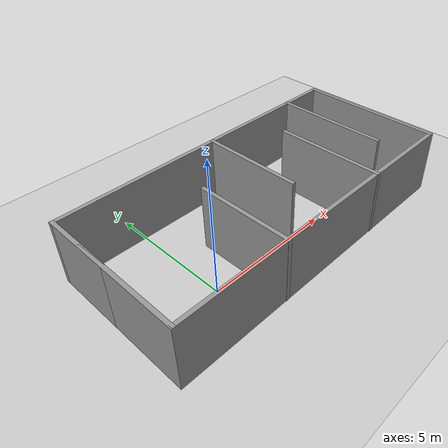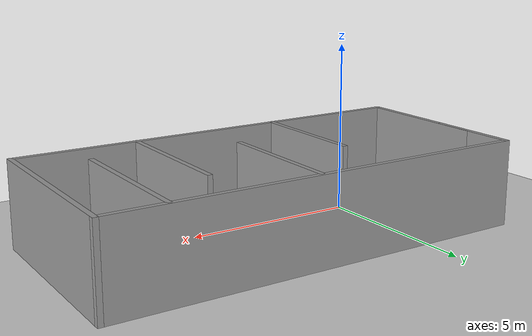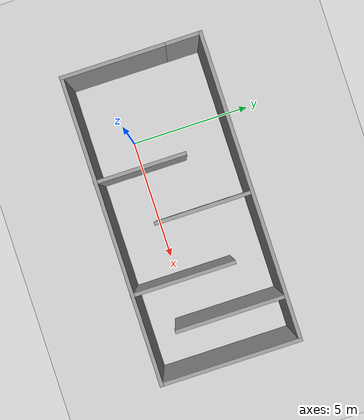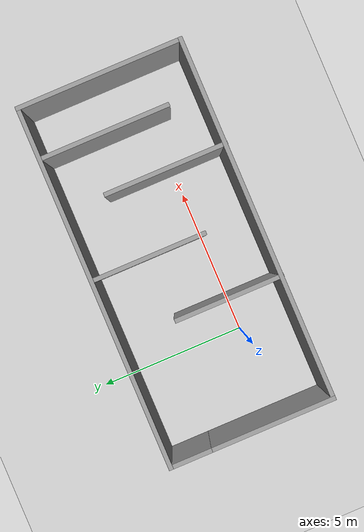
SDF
<sdf version="1.7">
 <world name="default">
  <light name="sun" type="directional">
   <pose>0 0 10 0 -0 0</pose>
   <diffuse>0.8 0.8 0.8 1</diffuse>
   <specular>0.2 0.2 0.2 1</specular>
   <attenuation>
    <range>1000</range>
    <constant>0.9</constant>
    <linear>0.01</linear>
    <quadratic>0.001</quadratic>
   </attenuation>
   <direction>-0.5 0.1 -0.9</direction>
   <spot><inner_angle>0</inner_angle><outer_angle>0</outer_angle><falloff>0</falloff></spot>
  </light>
  <model name="ground_plane">
   <static>1</static>
   <link name="link">
    <collision name="collision">
     <geometry><plane><normal>0 0 1</normal><size>100 100</size></plane></geometry>
     <surface>
      <contact><collide_bitmask>65535</collide_bitmask></contact>
      <friction><ode><mu>100</mu><mu2>50</mu2></ode></friction>
     </surface>
    </collision>
    <visual name="visual">
     <cast_shadows>0</cast_shadows>
     <geometry><plane><normal>0 0 1</normal><size>100 100</size></plane></geometry>
     <material>
      <script><uri>file://media/materials/scripts/gazebo.material</uri><name>Gazebo/Grey</name></script>
     </material>
    </visual>
   </link>
  </model>
  <gravity>0 0 -9.8</gravity>
  <magnetic_field>6e-06 2.3e-05 -4.2e-05</magnetic_field>
  <atmosphere type="adiabatic"/>
  <physics type="ode">
   <max_step_size>0.001</max_step_size>
   <real_time_factor>1</real_time_factor>
   <real_time_update_rate>1000</real_time_update_rate>
  </physics>
  <scene><ambient>0.4 0.4 0.4 1</ambient><background>0.7 0.7 0.7 1</background><shadows>1</shadows></scene>
  <spherical_coordinates>
   <surface_model>EARTH_WGS84</surface_model>
   <latitude_deg>0</latitude_deg>
   <longitude_deg>0</longitude_deg>
   <elevation>0</elevation>
   <heading_deg>0</heading_deg>
  </spherical_coordinates>
  <model name="Untitled">
   <pose>3.24084 1.01869 0 0 -0 0</pose>
   <link name="Wall_15">
    <collision name="Wall_15_Collision">
     <geometry><box><size>4.25 0.15 2.5</size></box></geometry>
     <pose>0 0 1.25 0 -0 0</pose>
    </collision>
    <visual name="Wall_15_Visual">
     <pose>0 0 1.25 0 -0 0</pose>
     <geometry><box><size>4.25 0.15 2.5</size></box></geometry>
     <material>
      <script><uri>file://media/materials/scripts/gazebo.material</uri><name>Gazebo/Grey</name></script>
      <ambient>1 1 1 1</ambient>
     </material>
     <meta><layer>0</layer></meta>
    </visual>
    <pose>-6.175 -0.745135 0 0 -0 -1.5708</pose>
   </link>
   <link name="Wall_16">
    <collision name="Wall_16_Collision">
     <geometry><box><size>12.5 0.15 2.5</size></box></geometry>
     <pose>0 0 1.25 0 -0 0</pose>
    </collision>
    <visual name="Wall_16_Visual">
     <pose>0 0 1.25 0 -0 0</pose>
     <geometry><box><size>12.5 0.15 2.5</size></box></geometry>
     <material>
      <script><uri>file://media/materials/scripts/gazebo.material</uri><name>Gazebo/Grey</name></script>
      <ambient>1 1 1 1</ambient>
     </material>
     <meta><layer>0</layer></meta>
    </visual>
    <pose>-0 -2.79514 0 0 -0 0</pose>
   </link>
   <link name="Wall_17">
    <collision name="Wall_17_Collision">
     <geometry><box><size>5.75 0.15 2.5</size></box></geometry>
     <pose>0 0 1.25 0 -0 0</pose>
    </collision>
    <visual name="Wall_17_Visual">
     <pose>0 0 1.25 0 -0 0</pose>
     <geometry><box><size>5.75 0.15 2.5</size></box></geometry>
     <material>
      <script><uri>file://media/materials/scripts/gazebo.material</uri><name>Gazebo/Grey</name></script>
      <ambient>1 1 1 1</ambient>
     </material>
     <meta><layer>0</layer></meta>
    </visual>
    <pose>6.175 0.004865 0 0 -0 1.5708</pose>
   </link>
   <link name="Wall_18">
    <collision name="Wall_18_Collision">
     <geometry><box><size>12.5 0.15 2.5</size></box></geometry>
     <pose>0 0 1.25 0 -0 0</pose>
    </collision>
    <visual name="Wall_18_Visual">
     <pose>0 0 1.25 0 -0 0</pose>
     <geometry><box><size>12.5 0.15 2.5</size></box></geometry>
     <material>
      <script><uri>file://media/materials/scripts/gazebo.material</uri><name>Gazebo/Grey</name></script>
      <ambient>1 1 1 1</ambient>
     </material>
     <meta><layer>0</layer></meta>
    </visual>
    <pose>-0 2.80486 0 0 -0 3.14159</pose>
   </link>
   <link name="Wall_19">
    <collision name="Wall_19_Collision">
     <geometry><box><size>2.75 0.15 2.5</size></box></geometry>
     <pose>0 0 1.25 0 -0 0</pose>
    </collision>
    <visual name="Wall_19_Visual">
     <pose>0 0 1.25 0 -0 0</pose>
     <geometry><box><size>2.75 0.15 2.5</size></box></geometry>
     <material>
      <script><uri>file://media/materials/scripts/gazebo.material</uri><name>Gazebo/Grey</name></script>
      <ambient>1 1 1 1</ambient>
     </material>
     <meta><layer>0</layer></meta>
    </visual>
    <pose>-6.175 1.50486 0 0 -0 -1.5708</pose>
   </link>
   <link name="Wall_22">
    <collision name="Wall_22_Collision">
     <geometry><box><size>3.75 0.15 2.5</size></box></geometry>
     <pose>0 0 1.25 0 -0 0</pose>
    </collision>
    <visual name="Wall_22_Visual">
     <pose>0 0 1.25 0 -0 0</pose>
     <geometry><box><size>3.75 0.15 2.5</size></box></geometry>
     <material>
      <script><uri>file://media/materials/scripts/gazebo.material</uri><name>Gazebo/Grey</name></script>
      <ambient>1 1 1 1</ambient>
     </material>
     <meta><layer>0</layer></meta>
    </visual>
    <pose>-1.96552 -1.00486 0 0 -0 1.5708</pose>
   </link>
   <link name="Wall_24">
    <collision name="Wall_24_Collision">
     <geometry><box><size>4 0.15 2.5</size></box></geometry>
     <pose>0 0 1.25 0 -0 0</pose>
    </collision>
    <visual name="Wall_24_Visual">
     <pose>0 0 1.25 0 -0 0</pose>
     <geometry><box><size>4 0.15 2.5</size></box></geometry>
     <material>
      <script><uri>file://media/materials/scripts/gazebo.material</uri><name>Gazebo/Grey</name></script>
      <ambient>1 1 1 1</ambient>
     </material>
     <meta><layer>0</layer></meta>
    </visual>
    <pose>0.228998 0.856176 0 0 -0 -1.5708</pose>
   </link>
   <link name="Wall_26">
    <collision name="Wall_26_Collision">
     <geometry><box><size>4.25 0.15 2.5</size></box></geometry>
     <pose>0 0 1.25 0 -0 0</pose>
    </collision>
    <visual name="Wall_26_Visual">
     <pose>0 0 1.25 0 -0 0</pose>
     <geometry><box><size>4.25 0.15 2.5</size></box></geometry>
     <material>
      <script><uri>file://media/materials/scripts/gazebo.material</uri><name>Gazebo/Grey</name></script>
      <ambient>1 1 1 1</ambient>
     </material>
     <meta><layer>0</layer></meta>
    </visual>
    <pose>2.58311 -0.754865 0 0 -0 1.5708</pose>
   </link>
   <link name="Wall_28">
    <collision name="Wall_28_Collision">
     <geometry><box><size>4.5 0.15 2.5</size></box></geometry>
     <pose>0 0 1.25 0 -0 0</pose>
    </collision>
    <visual name="Wall_28_Visual">
     <pose>0 0 1.25 0 -0 0</pose>
     <geometry><box><size>4.5 0.15 2.5</size></box></geometry>
     <material>
      <script><uri>file://media/materials/scripts/gazebo.material</uri><name>Gazebo/Grey</name></script>
      <ambient>1 1 1 1</ambient>
     </material>
     <meta><layer>0</layer></meta>
    </visual>
    <pose>4.41853 0.586226 0 0 -0 -1.5708</pose>
   </link>
   <static>1</static>
  </model>
 </world>
</sdf>
